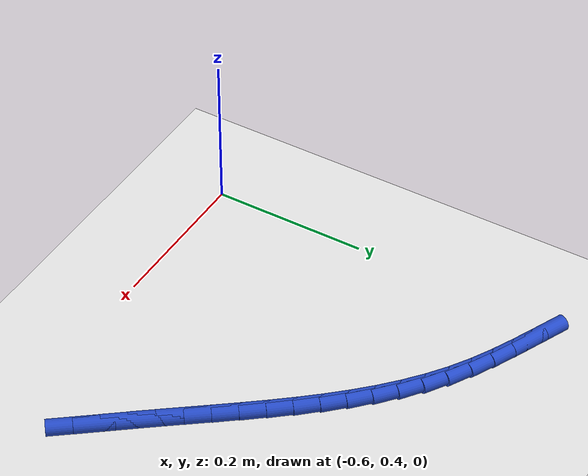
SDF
<sdf version="1.6">
 <world name="default">
  <model name="ground_plane">
   <static>1</static>
   <link name="link">
    <collision name="collision">
     <geometry><plane><normal>0 0 1</normal><size>100 100</size></plane></geometry>
     <surface><friction><ode><mu>100</mu><mu2>50</mu2></ode></friction></surface>
    </collision>
    <visual name="visual">
     <cast_shadows>0</cast_shadows>
     <geometry><plane><normal>0 0 1</normal><size>100 100</size></plane></geometry>
     <material>
      <script><uri>file://media/materials/scripts/gazebo.material</uri><name>Gazebo/WhiteGlow</name></script>
     </material>
    </visual>
   </link>
  </model>
  <model name="line">
   <link name="link_17">
    <pose>-0.16691780138352597 0.48326753757700064 0.01 0 1.57 -0.9089954864066254</pose>
    <collision name="collision">
     <geometry><cylinder><radius>0.01</radius><length>0.08</length></cylinder></geometry>
    </collision>
    <visual name="visual">
     <material>
      <script><name>Gazebo/Blue</name><uri>file://media/materials/scripts/gazebo.material</uri></script>
     </material>
     <geometry><cylinder><radius>0.01</radius><length>0.08</length></cylinder></geometry>
    </visual>
   </link>
   <link name="link_18">
    <pose>-0.1862936178900649 0.5081403912761695 0.01 0 1.57 -0.9059703376756326</pose>
    <collision name="collision">
     <geometry><cylinder><radius>0.01</radius><length>0.08</length></cylinder></geometry>
    </collision>
    <visual name="visual">
     <material>
      <script><name>Gazebo/Blue</name><uri>file://media/materials/scripts/gazebo.material</uri></script>
     </material>
     <geometry><cylinder><radius>0.01</radius><length>0.08</length></cylinder></geometry>
    </visual>
   </link>
   <link name="link_19">
    <pose>-0.20580919687245272 0.5330369376187822 0.01 0 1.57 -0.9092200186956592</pose>
    <collision name="collision">
     <geometry><cylinder><radius>0.01</radius><length>0.08</length></cylinder></geometry>
    </collision>
    <visual name="visual">
     <material>
      <script><name>Gazebo/Blue</name><uri>file://media/materials/scripts/gazebo.material</uri></script>
     </material>
     <geometry><cylinder><radius>0.01</radius><length>0.08</length></cylinder></geometry>
    </visual>
   </link>
   <link name="link_20">
    <pose>-0.22528209696572 0.5580459988531922 0.01 0 1.57 -0.9157884607096277</pose>
    <collision name="collision">
     <geometry><cylinder><radius>0.01</radius><length>0.08</length></cylinder></geometry>
    </collision>
    <visual name="visual">
     <material>
      <script><name>Gazebo/Blue</name><uri>file://media/materials/scripts/gazebo.material</uri></script>
     </material>
     <geometry><cylinder><radius>0.01</radius><length>0.08</length></cylinder></geometry>
    </visual>
   </link>
   <link name="link_21">
    <pose>-0.2446019502811583 0.5831975833292085 0.01 0 1.57 -0.9173485451495197</pose>
    <collision name="collision">
     <geometry><cylinder><radius>0.01</radius><length>0.08</length></cylinder></geometry>
    </collision>
    <visual name="visual">
     <material>
      <script><name>Gazebo/Blue</name><uri>file://media/materials/scripts/gazebo.material</uri></script>
     </material>
     <geometry><cylinder><radius>0.01</radius><length>0.08</length></cylinder></geometry>
    </visual>
   </link>
   <link name="link_22">
    <pose>-0.2638634598900939 0.6083543559679153 0.01 0 1.57 -0.912413605386662</pose>
    <collision name="collision">
     <geometry><cylinder><radius>0.01</radius><length>0.08</length></cylinder></geometry>
    </collision>
    <visual name="visual">
     <material>
      <script><name>Gazebo/Blue</name><uri>file://media/materials/scripts/gazebo.material</uri></script>
     </material>
     <geometry><cylinder><radius>0.01</radius><length>0.08</length></cylinder></geometry>
    </visual>
   </link>
   <link name="link_23">
    <pose>-0.2831975582210198 0.6333494175588017 0.01 0 1.57 -0.9009079107747728</pose>
    <collision name="collision">
     <geometry><cylinder><radius>0.01</radius><length>0.08</length></cylinder></geometry>
    </collision>
    <visual name="visual">
     <material>
      <script><name>Gazebo/Blue</name><uri>file://media/materials/scripts/gazebo.material</uri></script>
     </material>
     <geometry><cylinder><radius>0.01</radius><length>0.08</length></cylinder></geometry>
    </visual>
   </link>
   <link name="link_24">
    <pose>-0.3027351777024291 0.6580158688913568 0.01 0 1.57 -0.8826961027737683</pose>
    <collision name="collision">
     <geometry><cylinder><radius>0.01</radius><length>0.08</length></cylinder></geometry>
    </collision>
    <visual name="visual">
     <material>
      <script><name>Gazebo/Blue</name><uri>file://media/materials/scripts/gazebo.material</uri></script>
     </material>
     <geometry><cylinder><radius>0.01</radius><length>0.08</length></cylinder></geometry>
    </visual>
   </link>
   <link name="link_25">
    <pose>-0.3226072507628147 0.6821868107550688 0.01 0 1.57 -0.8575954692149445</pose>
    <collision name="collision">
     <geometry><cylinder><radius>0.01</radius><length>0.08</length></cylinder></geometry>
    </collision>
    <visual name="visual">
     <material>
      <script><name>Gazebo/Blue</name><uri>file://media/materials/scripts/gazebo.material</uri></script>
     </material>
     <geometry><cylinder><radius>0.01</radius><length>0.08</length></cylinder></geometry>
    </visual>
   </link>
   <link name="link_26">
    <pose>-0.3429447098306698 0.7056953439394272 0.01 0 1.57 -0.8253980872158135</pose>
    <collision name="collision">
     <geometry><cylinder><radius>0.01</radius><length>0.08</length></cylinder></geometry>
    </collision>
    <visual name="visual">
     <material>
      <script><name>Gazebo/Blue</name><uri>file://media/materials/scripts/gazebo.material</uri></script>
     </material>
     <geometry><cylinder><radius>0.01</radius><length>0.08</length></cylinder></geometry>
    </visual>
   </link>
   <link name="link_27">
    <pose>-0.3638784873344875 0.728374569233921 0.01 0 1.57 -0.7859054954465313</pose>
    <collision name="collision">
     <geometry><cylinder><radius>0.01</radius><length>0.08</length></cylinder></geometry>
    </collision>
    <visual name="visual">
     <material>
      <script><name>Gazebo/Blue</name><uri>file://media/materials/scripts/gazebo.material</uri></script>
     </material>
     <geometry><cylinder><radius>0.01</radius><length>0.08</length></cylinder></geometry>
    </visual>
   </link>
   <link name="link_28">
    <pose>-0.38553951570276085 0.750057587428039 0.01 0 1.57 -0.7389784553765539</pose>
    <collision name="collision">
     <geometry><cylinder><radius>0.01</radius><length>0.08</length></cylinder></geometry>
    </collision>
    <visual name="visual">
     <material>
      <script><name>Gazebo/Blue</name><uri>file://media/materials/scripts/gazebo.material</uri></script>
     </material>
     <geometry><cylinder><radius>0.01</radius><length>0.08</length></cylinder></geometry>
    </visual>
   </link>
   <link name="link_29">
    <pose>-0.4080587273639827 0.7705774993112697 0.01 0 1.57 -0.6846027420597098</pose>
    <collision name="collision">
     <geometry><cylinder><radius>0.01</radius><length>0.08</length></cylinder></geometry>
    </collision>
    <visual name="visual">
     <material>
      <script><name>Gazebo/Blue</name><uri>file://media/materials/scripts/gazebo.material</uri></script>
     </material>
     <geometry><cylinder><radius>0.01</radius><length>0.08</length></cylinder></geometry>
    </visual>
   </link>
   <link name="link_30">
    <pose>-0.4315670547466465 0.7897674056731028 0.01 0 1.57 -0.6229678870915362</pose>
    <collision name="collision">
     <geometry><cylinder><radius>0.01</radius><length>0.08</length></cylinder></geometry>
    </collision>
    <visual name="visual">
     <material>
      <script><name>Gazebo/Blue</name><uri>file://media/materials/scripts/gazebo.material</uri></script>
     </material>
     <geometry><cylinder><radius>0.01</radius><length>0.08</length></cylinder></geometry>
    </visual>
   </link>
   <link name="link_31">
    <pose>-0.456195430279245 0.8074604073030268 0.01 0 1.57 -0.5547058360312105</pose>
    <collision name="collision">
     <geometry><cylinder><radius>0.01</radius><length>0.08</length></cylinder></geometry>
    </collision>
    <visual name="visual">
     <material>
      <script><name>Gazebo/Blue</name><uri>file://media/materials/scripts/gazebo.material</uri></script>
     </material>
     <geometry><cylinder><radius>0.01</radius><length>0.08</length></cylinder></geometry>
    </visual>
   </link>
   <link name="link_32">
    <pose>-0.4820718744353938 0.8234934196681538 0.01 0 1.57 -0.48992020300903294</pose>
    <collision name="collision">
     <geometry><cylinder><radius>0.01</radius><length>0.08</length></cylinder></geometry>
    </collision>
    <visual name="visual">
     <material>
      <script><name>Gazebo/Blue</name><uri>file://media/materials/scripts/gazebo.material</uri></script>
     </material>
     <geometry><cylinder><radius>0.01</radius><length>0.08</length></cylinder></geometry>
    </visual>
   </link>
   <link name="link_33">
    <pose>-0.5091489354954488 0.8379332278171359 0.01 0 1.57 -0.4431651346322764</pose>
    <collision name="collision">
     <geometry><cylinder><radius>0.01</radius><length>0.08</length></cylinder></geometry>
    </collision>
    <visual name="visual">
     <material>
      <script><name>Gazebo/Blue</name><uri>file://media/materials/scripts/gazebo.material</uri></script>
     </material>
     <geometry><cylinder><radius>0.01</radius><length>0.08</length></cylinder></geometry>
    </visual>
   </link>
   <link name="link_34">
    <pose>-0.5371067448820345 0.8512034844477239 0.01 0 1.57 -0.4150134319221276</pose>
    <collision name="collision">
     <geometry><cylinder><radius>0.01</radius><length>0.08</length></cylinder></geometry>
    </collision>
    <visual name="visual">
     <material>
      <script><name>Gazebo/Blue</name><uri>file://media/materials/scripts/gazebo.material</uri></script>
     </material>
     <geometry><cylinder><radius>0.01</radius><length>0.08</length></cylinder></geometry>
    </visual>
   </link>
   <link name="link_35">
    <pose>-0.5656019493991258 0.8637586072430574 0.01 0 1.57 -0.40486278913823814</pose>
    <collision name="collision">
     <geometry><cylinder><radius>0.01</radius><length>0.08</length></cylinder></geometry>
    </collision>
    <visual name="visual">
     <material>
      <script><name>Gazebo/Blue</name><uri>file://media/materials/scripts/gazebo.material</uri></script>
     </material>
     <geometry><cylinder><radius>0.01</radius><length>0.08</length></cylinder></geometry>
    </visual>
   </link>
  </model>
 </world>
</sdf>
